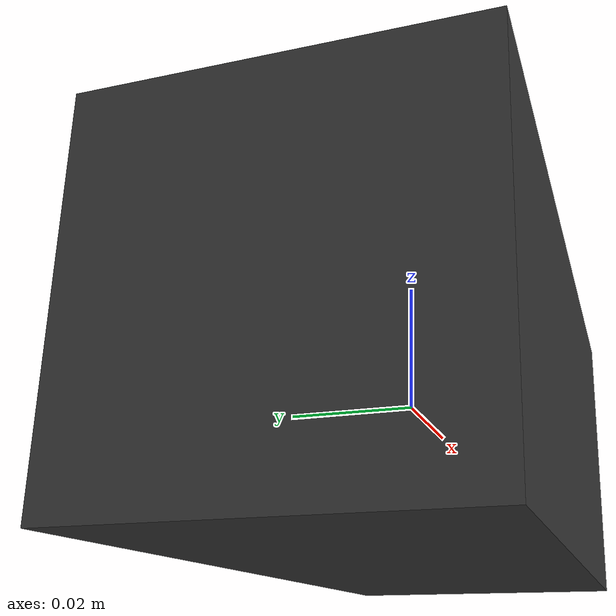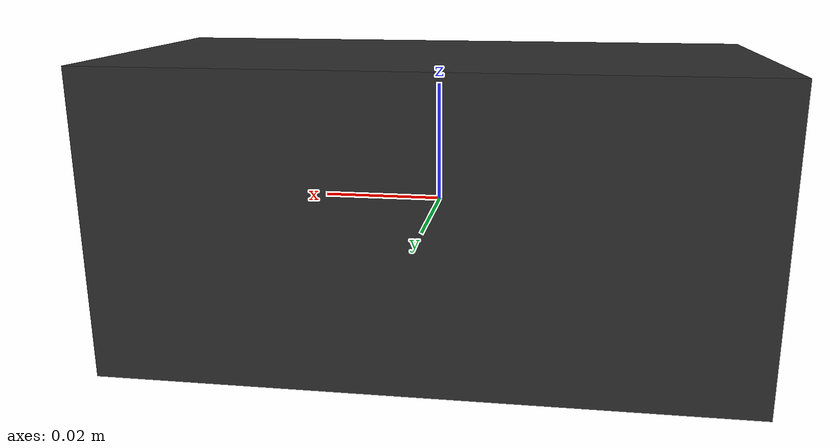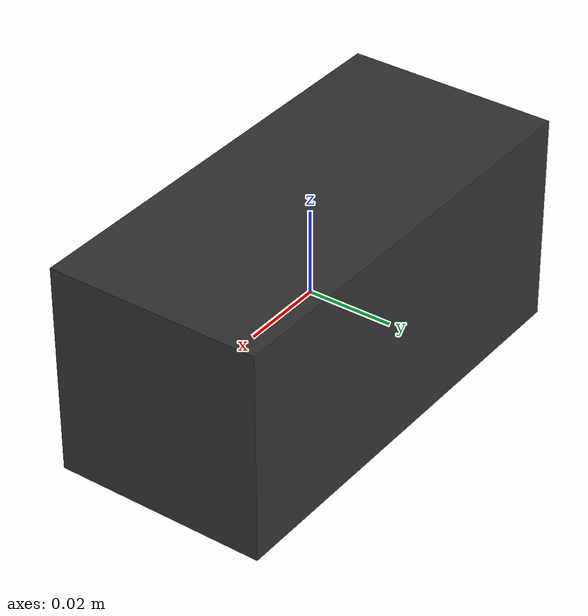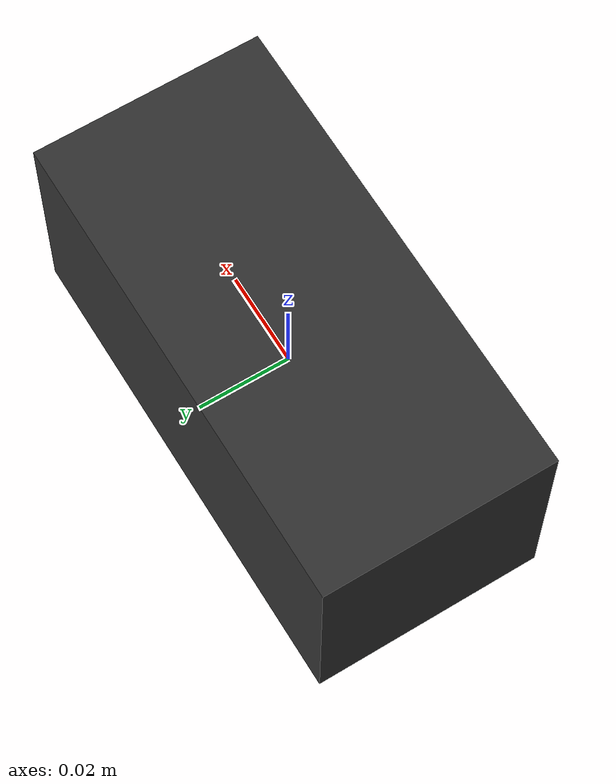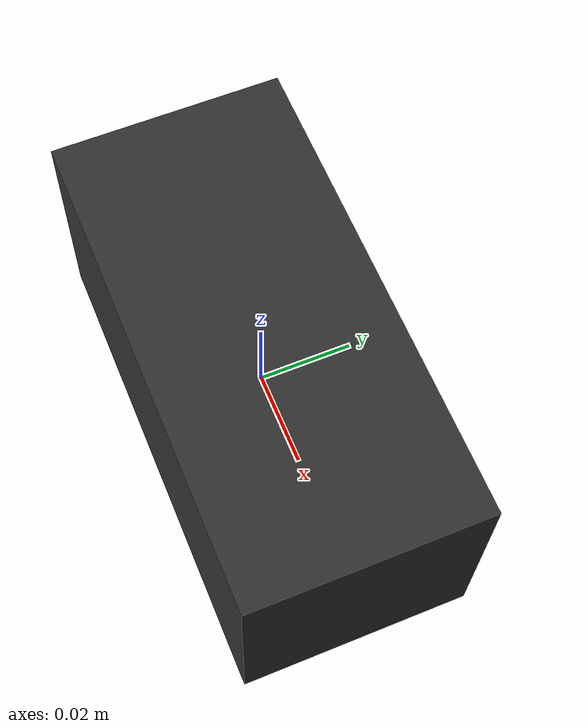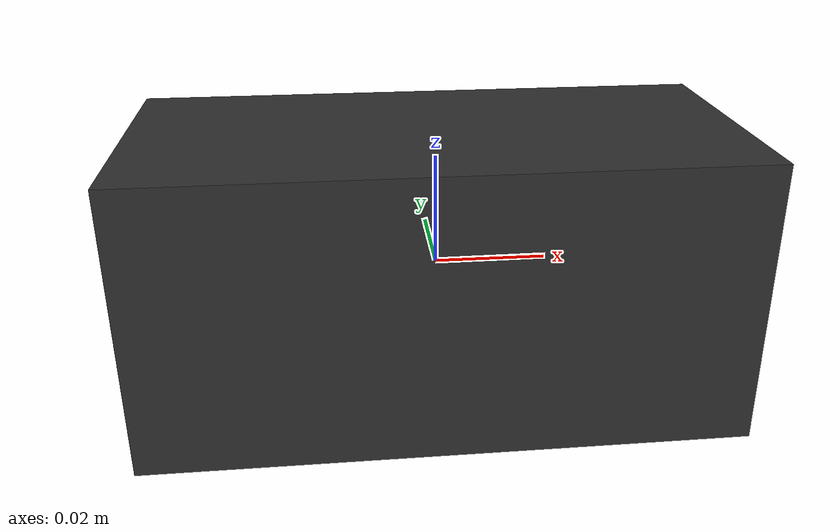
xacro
<?xml version="1.0"?>
<!--
SPDX-FileCopyrightText: Alliander N. V.
SPDX-License-Identifier: Apache-2.0
-->
<robot xmlns:xacro="http://www.ros.org/wiki/xacro" name="seekthermal_module">
  <xacro:macro name="seekthermal_g300"
    params="
    namespace
    parent
    use_sim:=true
    ">

    <!-- Gazebo requires a joint to a link called "world" for statically mounted robots -->
    <xacro:if value="${parent == 'world'}">
      <link name="${parent}" />
      <joint name="${parent}_joint" type="fixed">
	<parent link="${parent}" />
	<child link="base_link" />
      </joint>
    </xacro:if>

    <link name="base_link"/>
    <link name="seekthermal_link">

      <visual>
	<origin xyz="0 0 0" rpy="0 0 0"/>
	<geometry>
	  <box size="0.105 0.050 0.050"/>
	</geometry>
	<material name="dark_grey">
	  <color rgba="0.2 0.2 0.2 1.0"/>
	</material>
      </visual>

      <collision>
	<origin xyz="0 0 0" rpy="0 0 0"/>
	<geometry>
	  <box size="0.105 0.050 0.050"/>
	</geometry>
      </collision>

      <inertial>
	<mass value="0.340"/>
	<origin xyz="0 0 0" rpy="0 0 0"/>
	<inertia ixx="0.000142" ixy="0.0" ixz="0.0"
				 iyy="0.000384" iyz="0.0"
						izz="0.000384"/>
      </inertial>

    </link>

    <joint name="seekthermal_joint" type="fixed">
      <parent link="base_link"/>
      <child  link="seekthermal_link"/>
      <origin xyz="0 0 0" rpy="0 0 0"/>
    </joint>

    <link name="seekthermal_link_optical"/>
    <joint name="seekthermal_optical_joint" type="fixed">
      <parent link="seekthermal_link"/>
      <child  link="seekthermal_link_optical"/>
      <origin xyz="0 0 0" rpy="0 0 0"/>
    </joint>

    <xacro:if value="${use_sim}">
      <gazebo reference="seekthermal_link_optical">
	<sensor type="thermal" name="seekthermal">
	  <always_on>true</always_on>
	  <update_rate>9.0</update_rate>

	  <topic>${namespace}/thermal/image</topic>
	  <visualize>true</visualize>

	  <gz_frame_id>${namespace}/seekthermal_link_optical</gz_frame_id>
	  <camera>
	    <horizontal_fov>${58.0/180.0*pi}</horizontal_fov>
	    <vertical_fov>${42.0/180.0*pi}</vertical_fov>
	    <image>
	      <width>320</width>
	      <height>240</height>
	      <format>L16</format>
	    </image>
	    <clip>
	      <near>0.1</near>
	      <far>100.0</far>
	    </clip>
	  </camera>

	  <plugin
	    filename="ignition-gazebo-thermal-sensor-system"
	    name="gz::sim::systems::ThermalSensor">
	    <!-- -20 °C to 550 °C  -->
	    <min_temp>253.15</min_temp>
	    <max_temp>823.15</max_temp>
	    <!-- 570 degrees / 16 bits ~ 0.009 degrees resolution -->
	    <resolution>0.01</resolution>
	  </plugin>
	</sensor>
      </gazebo>
    </xacro:if>
  </xacro:macro>
  <xacro:arg name="namespace" default="seekthermal" />
  <xacro:arg name="parent" default="" />
  <xacro:seekthermal_g300 namespace="$(arg namespace)" parent="$(arg parent)" />
</robot>
